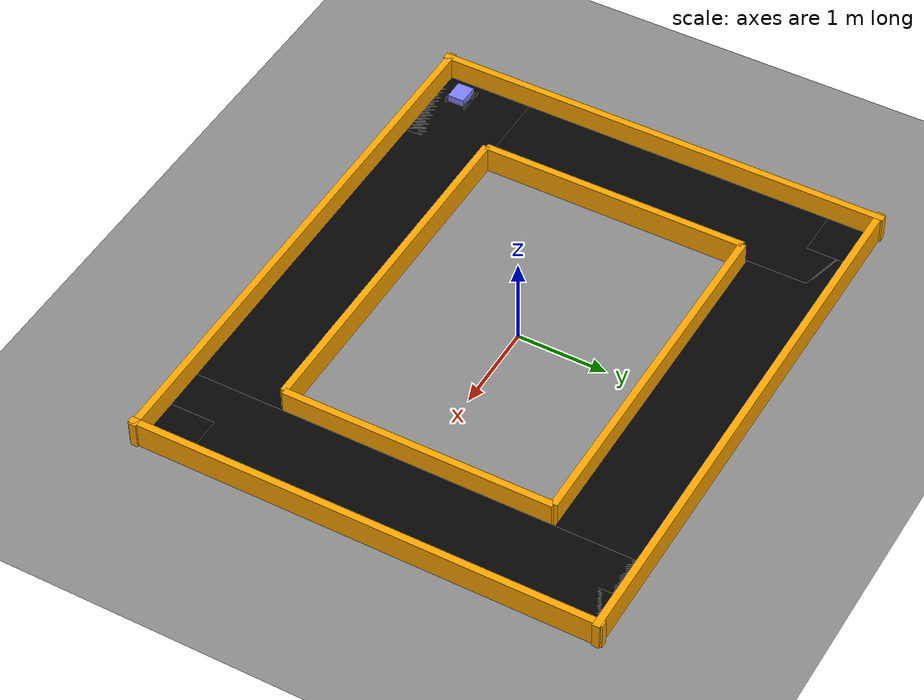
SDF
<?xml version="1.0" ?>
<sdf version="1.8">
  <world name="city_track_world">

    <plugin filename="gz-sim-physics-system" name="gz::sim::systems::Physics"/>
    <plugin filename="gz-sim-user-commands-system" name="gz::sim::systems::UserCommands"/>
    <plugin filename="gz-sim-scene-broadcaster-system" name="gz::sim::systems::SceneBroadcaster"/>

    <light type="directional" name="sun">
      <cast_shadows>true</cast_shadows>
      <pose>0 0 10 0 0 0</pose>
      <diffuse>0.8 0.8 0.8 1</diffuse>
      <specular>0.2 0.2 0.2 1</specular>
      <direction>-0.5 0.1 -0.9</direction>
    </light>

    <model name="ground_plane">
      <static>true</static>
      <link name="link">
        <collision name="collision">
          <geometry>
            <plane>
              <normal>0 0 1</normal>
              <size>20 20</size>
            </plane>
          </geometry>
        </collision>
        <visual name="visual">
          <geometry>
            <plane>
              <normal>0 0 1</normal>
              <size>20 20</size>
            </plane>
          </geometry>
          <material>
            <ambient>0.55 0.55 0.55 1</ambient>
            <diffuse>0.55 0.55 0.55 1</diffuse>
          </material>
        </visual>
      </link>
    </model>

    <!-- ================= CITY TRACK ROAD ================= -->
    <!-- Outer dimensions about 5 m x 4 m, track width about 0.5 m -->

    <!-- Bottom straight road -->
    <model name="bottom_road">
      <static>true</static>
      <pose>0 -2.02 0.03 0 0 0</pose>
      <link name="link">
        <visual name="visual">
          <geometry><box><size>6.0 0.96 0.04</size></box></geometry>
          <material><ambient>0.02 0.02 0.02 1</ambient><diffuse>0.02 0.02 0.02 1</diffuse></material>
        </visual>
      </link>
    </model>

    <!-- Top straight road -->
    <model name="top_road">
      <static>true</static>
      <pose>0 2.02 0.03 0 0 0</pose>
      <link name="link">
        <visual name="visual">
          <geometry><box><size>6.0 0.96 0.04</size></box></geometry>
          <material><ambient>0.02 0.02 0.02 1</ambient><diffuse>0.02 0.02 0.02 1</diffuse></material>
        </visual>
      </link>
    </model>

    <!-- Left straight road -->
    <model name="left_road">
      <static>true</static>
      <pose>-2.52 0 0.03 0 0 0</pose>
      <link name="link">
        <visual name="visual">
          <geometry><box><size>0.96 5.0 0.04</size></box></geometry>
          <material><ambient>0.02 0.02 0.02 1</ambient><diffuse>0.02 0.02 0.02 1</diffuse></material>
        </visual>
      </link>
    </model>

    <!-- Right straight road -->
    <model name="right_road">
      <static>true</static>
      <pose>2.52 0 0.03 0 0 0</pose>
      <link name="link">
        <visual name="visual">
          <geometry><box><size>0.96 5.0 0.04</size></box></geometry>
          <material><ambient>0.02 0.02 0.02 1</ambient><diffuse>0.02 0.02 0.02 1</diffuse></material>
        </visual>
      </link>
    </model>

    <!-- Corner blocks to visually complete the city loop -->
    <model name="corner_top_left">
      <static>true</static>
      <pose>-2.75 2.25 0.03 0 0 0</pose>
      <link name="link">
        <visual name="visual">
          <geometry><box><size>0.5 0.5 0.04</size></box></geometry>
          <material><ambient>0.02 0.02 0.02 1</ambient><diffuse>0.02 0.02 0.02 1</diffuse></material>
        </visual>
      </link>
    </model>

    <model name="corner_top_right">
      <static>true</static>
      <pose>2.75 2.25 0.03 0 0 0</pose>
      <link name="link">
        <visual name="visual">
          <geometry><box><size>0.5 0.5 0.04</size></box></geometry>
          <material><ambient>0.02 0.02 0.02 1</ambient><diffuse>0.02 0.02 0.02 1</diffuse></material>
        </visual>
      </link>
    </model>

    <model name="corner_bottom_left">
      <static>true</static>
      <pose>-2.75 -2.25 0.03 0 0 0</pose>
      <link name="link">
        <visual name="visual">
          <geometry><box><size>0.5 0.5 0.04</size></box></geometry>
          <material><ambient>0.02 0.02 0.02 1</ambient><diffuse>0.02 0.02 0.02 1</diffuse></material>
        </visual>
      </link>
    </model>

    <model name="corner_bottom_right">
      <static>true</static>
      <pose>2.75 -2.25 0.03 0 0 0</pose>
      <link name="link">
        <visual name="visual">
          <geometry><box><size>0.5 0.5 0.04</size></box></geometry>
          <material><ambient>0.02 0.02 0.02 1</ambient><diffuse>0.02 0.02 0.02 1</diffuse></material>
        </visual>
      </link>
    </model>

    <!-- ================= WALLS TO LIMIT WORKSPACE ================= -->
    <!-- Outer walls -->
    <model name="outer_wall_top">
      <static>true</static>
      <pose>0 2.54 0.15 0 0 0</pose>
      <link name="link">
        <visual name="visual"><geometry><box><size>6.2 0.08 0.30</size></box></geometry><material><ambient>1 0.65 0 1</ambient><diffuse>1 0.65 0 1</diffuse></material></visual>
        <collision name="collision"><geometry><box><size>5.2 0.08 0.30</size></box></geometry></collision>
      </link>
    </model>

    <model name="outer_wall_bottom">
      <static>true</static>
      <pose>0 -2.54 0.15 0 0 0</pose>
      <link name="link">
        <visual name="visual"><geometry><box><size>6.2 0.08 0.30</size></box></geometry><material><ambient>1 0.65 0 1</ambient><diffuse>1 0.65 0 1</diffuse></material></visual>
        <collision name="collision"><geometry><box><size>5.2 0.08 0.30</size></box></geometry></collision>
      </link>
    </model>

    <model name="outer_wall_left">
      <static>true</static>
      <pose>-3.04 0 0.15 0 0 0</pose>
      <link name="link">
        <visual name="visual"><geometry><box><size>0.08 5.2 0.30</size></box></geometry><material><ambient>1 0.65 0 1</ambient><diffuse>1 0.65 0 1</diffuse></material></visual>
        <collision name="collision"><geometry><box><size>0.08 4.2 0.30</size></box></geometry></collision>
      </link>
    </model>

    <model name="outer_wall_right">
      <static>true</static>
      <pose>3.04 0 0.15 0 0 0</pose>
      <link name="link">
        <visual name="visual"><geometry><box><size>0.08 5.2 0.30</size></box></geometry><material><ambient>1 0.65 0 1</ambient><diffuse>1 0.65 0 1</diffuse></material></visual>
        <collision name="collision"><geometry><box><size>0.08 4.2 0.30</size></box></geometry></collision>
      </link>
    </model>

    <!-- Inner walls / island -->
    <model name="inner_wall_top">
      <static>true</static>
      <pose>0 1.50 0.15 0 0 0</pose>
      <link name="link">
        <visual name="visual"><geometry><box><size>4.0 0.08 0.30</size></box></geometry><material><ambient>1 0.65 0 1</ambient><diffuse>1 0.65 0 1</diffuse></material></visual>
        <collision name="collision"><geometry><box><size>3.8 0.08 0.30</size></box></geometry></collision>
      </link>
    </model>

    <model name="inner_wall_bottom">
      <static>true</static>
      <pose>0 -1.50 0.15 0 0 0</pose>
      <link name="link">
        <visual name="visual"><geometry><box><size>4.0 0.08 0.30</size></box></geometry><material><ambient>1 0.65 0 1</ambient><diffuse>1 0.65 0 1</diffuse></material></visual>
        <collision name="collision"><geometry><box><size>3.8 0.08 0.30</size></box></geometry></collision>
      </link>
    </model>

    <model name="inner_wall_left">
      <static>true</static>
      <pose>-2.00 0 0.15 0 0 0</pose>
      <link name="link">
        <visual name="visual"><geometry><box><size>0.08 3.0 0.30</size></box></geometry><material><ambient>1 0.65 0 1</ambient><diffuse>1 0.65 0 1</diffuse></material></visual>
        <collision name="collision"><geometry><box><size>0.08 2.4 0.30</size></box></geometry></collision>
      </link>
    </model>

    <model name="inner_wall_right">
      <static>true</static>
      <pose>2.00 0 0.15 0 0 0</pose>
      <link name="link">
        <visual name="visual"><geometry><box><size>0.08 3.0 0.30</size></box></geometry><material><ambient>1 0.65 0 1</ambient><diffuse>1 0.65 0 1</diffuse></material></visual>
        <collision name="collision"><geometry><box><size>0.08 2.4 0.30</size></box></geometry></collision>
      </link>
    </model>

    <!-- ================= VEHICLE ================= -->
    <model name='vehicle_blue'>
      <pose>-2.75 -2.25 0.01625 0 0 -0.000003</pose>
      <link name='chassis'>
        <pose>-0.017036 0 0.04375 0 0 0</pose>
        <inertial>
          <mass>1.14395</mass>
          <inertia>
            <ixx>0.126164</ixx>
            <ixy>0</ixy>
            <ixz>0</ixz>
            <iyy>0.41651899999999997</iyy>
            <iyz>0</iyz>
            <izz>0.481014</izz>
          </inertia>
          <pose>0 0 0 0 0 0</pose>
        </inertial>
        <visual name='visual'>
          <geometry>
            <box>
              <size>0.226285 0.1875 0.142181</size>
            </box>
          </geometry>
          <material>
            <ambient>0.5 0.5 1 1</ambient>
            <diffuse>0.5 0.5 1 1</diffuse>
            <specular>0 0 1 1</specular>
          </material>
        </visual>
        <collision name='collision'>
          <geometry>
            <box>
              <size>0.226285 0.1875 0.142181</size>
            </box>
          </geometry>
          <surface>
            <friction>
              <ode/>
            </friction>
            <bounce/>
            <contact/>
          </surface>
        </collision>
        <enable_wind>false</enable_wind>
      </link>
      <link name='front_left_wheel'>
        <pose>0.062357 0.117193 -0.00625 -1.5707 0 0</pose>
        <inertial>
          <mass>2</mass>
          <inertia>
            <ixx>0.14583299999999999</ixx>
            <ixy>0</ixy>
            <ixz>0</ixz>
            <iyy>0.14583299999999999</iyy>
            <iyz>0</iyz>
            <izz>0.125</izz>
          </inertia>
          <pose>0 0 0 0 0 0</pose>
        </inertial>
        <visual name='visual'>
          <geometry>
            <cylinder>
              <length>0.028125</length>
              <radius>0.075</radius>
            </cylinder>
          </geometry>
          <material>
            <ambient>0.200000003 0.200000003 0.200000003 1</ambient>
            <diffuse>0.200000003 0.200000003 0.200000003 1</diffuse>
            <specular>0.200000003 0.200000003 0.200000003 1</specular>
          </material>
        </visual>
        <collision name='collision'>
          <geometry>
            <cylinder>
              <length>0.028125</length>
              <radius>0.075</radius>
            </cylinder>
          </geometry>
          <surface>
            <friction>
              <ode>
                <mu>0.5</mu>
                <mu2>1</mu2>
                <fdir1>0 0 1</fdir1>
              </ode>
              <bullet>
                <friction>0.5</friction>
                <friction2>1</friction2>
                <rolling_friction>0.10000000000000001</rolling_friction>
              </bullet>
            </friction>
            <bounce/>
            <contact/>
          </surface>
        </collision>
        <enable_wind>false</enable_wind>
      </link>
      <link name='rear_left_wheel'>
        <pose>-0.107678 0.117193 -0.00625 -1.5707 0 0</pose>
        <inertial>
          <mass>2</mass>
          <inertia>
            <ixx>0.14583299999999999</ixx>
            <ixy>0</ixy>
            <ixz>0</ixz>
            <iyy>0.14583299999999999</iyy>
            <iyz>0</iyz>
            <izz>0.125</izz>
          </inertia>
          <pose>0 0 0 0 0 0</pose>
        </inertial>
        <visual name='visual'>
          <geometry>
            <cylinder>
              <length>0.028125</length>
              <radius>0.075</radius>
            </cylinder>
          </geometry>
          <material>
            <ambient>0.200000003 0.200000003 0.200000003 1</ambient>
            <diffuse>0.200000003 0.200000003 0.200000003 1</diffuse>
            <specular>0.200000003 0.200000003 0.200000003 1</specular>
          </material>
        </visual>
        <collision name='collision'>
          <geometry>
            <cylinder>
              <length>0.028125</length>
              <radius>0.075</radius>
            </cylinder>
          </geometry>
          <surface>
            <friction>
              <ode>
                <mu>0.5</mu>
                <mu2>1</mu2>
                <fdir1>0 0 1</fdir1>
              </ode>
              <bullet>
                <friction>0.5</friction>
                <friction2>1</friction2>
                <rolling_friction>0.5</rolling_friction>
              </bullet>
            </friction>
            <bounce/>
            <contact/>
          </surface>
        </collision>
        <enable_wind>false</enable_wind>
      </link>
      <link name='front_right_wheel'>
        <pose>0.062357 -0.117193 -0.00625 -1.5707 0 0</pose>
        <inertial>
          <mass>2</mass>
          <inertia>
            <ixx>0.14583299999999999</ixx>
            <ixy>0</ixy>
            <ixz>0</ixz>
            <iyy>0.14583299999999999</iyy>
            <iyz>0</iyz>
            <izz>0.125</izz>
          </inertia>
          <pose>0 0 0 0 0 0</pose>
        </inertial>
        <visual name='visual'>
          <geometry>
            <cylinder>
              <length>0.028125</length>
              <radius>0.075</radius>
            </cylinder>
          </geometry>
          <material>
            <ambient>0.200000003 0.200000003 0.200000003 1</ambient>
            <diffuse>0.200000003 0.200000003 0.200000003 1</diffuse>
            <specular>0.200000003 0.200000003 0.200000003 1</specular>
          </material>
        </visual>
        <collision name='collision'>
          <geometry>
            <cylinder>
              <length>0.028125</length>
              <radius>0.075</radius>
            </cylinder>
          </geometry>
          <surface>
            <friction>
              <ode>
                <mu>0.5</mu>
                <mu2>1</mu2>
                <fdir1>0 0 1</fdir1>
              </ode>
              <bullet>
                <friction>0.5</friction>
                <friction2>1</friction2>
                <rolling_friction>0.10000000000000001</rolling_friction>
              </bullet>
            </friction>
            <bounce/>
            <contact/>
          </surface>
        </collision>
        <enable_wind>false</enable_wind>
      </link>
      <link name='rear_right_wheel'>
        <pose>-0.107678 -0.117193 -0.00625 -1.5707 0 0</pose>
        <inertial>
          <mass>2</mass>
          <inertia>
            <ixx>0.14583299999999999</ixx>
            <ixy>0</ixy>
            <ixz>0</ixz>
            <iyy>0.14583299999999999</iyy>
            <iyz>0</iyz>
            <izz>0.125</izz>
          </inertia>
          <pose>0 0 0 0 0 0</pose>
        </inertial>
        <visual name='visual'>
          <geometry>
            <cylinder>
              <length>0.028125</length>
              <radius>0.075</radius>
            </cylinder>
          </geometry>
          <material>
            <ambient>0.200000003 0.200000003 0.200000003 1</ambient>
            <diffuse>0.200000003 0.200000003 0.200000003 1</diffuse>
            <specular>0.200000003 0.200000003 0.200000003 1</specular>
          </material>
        </visual>
        <collision name='collision'>
          <geometry>
            <cylinder>
              <length>0.028125</length>
              <radius>0.075</radius>
            </cylinder>
          </geometry>
          <surface>
            <friction>
              <ode>
                <mu>0.5</mu>
                <mu2>1</mu2>
                <fdir1>0 0 1</fdir1>
              </ode>
              <bullet>
                <friction>0.5</friction>
                <friction2>1</friction2>
                <rolling_friction>0.5</rolling_friction>
              </bullet>
            </friction>
            <bounce/>
            <contact/>
          </surface>
        </collision>
        <enable_wind>false</enable_wind>
      </link>
      <link name='front_left_wheel_steering_link'>
        <pose>0.062357 0.09375 0.005 0 0 0</pose>
        <inertial>
          <mass>0.5</mass>
          <inertia>
            <ixx>0.015299999999999999</ixx>
            <iyy>0.025000000000000001</iyy>
            <izz>0.015299999999999999</izz>
            <ixy>0</ixy>
            <ixz>0</ixz>
            <iyz>0</iyz>
          </inertia>
          <pose>0 0 0 0 0 0</pose>
        </inertial>
        <visual name='steering_link_visual'>
          <pose>0 0 0 0 0 0</pose>
          <geometry>
            <cylinder>
              <length>0.01875</length>
              <radius>0.0075</radius>
            </cylinder>
          </geometry>
          <material>
            <ambient>1 1 1 1</ambient>
            <diffuse>1 1 1 1</diffuse>
          </material>
        </visual>
        <enable_wind>false</enable_wind>
      </link>
      <link name='front_right_wheel_steering_link'>
        <pose>0.062357 -0.09375 0.005 0 0 0</pose>
        <inertial>
          <mass>0.5</mass>
          <inertia>
            <ixx>0.015299999999999999</ixx>
            <iyy>0.025000000000000001</iyy>
            <izz>0.015299999999999999</izz>
            <ixy>0</ixy>
            <ixz>0</ixz>
            <iyz>0</iyz>
          </inertia>
          <pose>0 0 0 0 0 0</pose>
        </inertial>
        <visual name='steering_link_visual'>
          <pose>0 0 0 0 0 0</pose>
          <geometry>
            <cylinder>
              <length>0.01875</length>
              <radius>0.0075</radius>
            </cylinder>
          </geometry>
          <material>
            <ambient>1 1 1 1</ambient>
            <diffuse>1 1 1 1</diffuse>
          </material>
        </visual>
        <enable_wind>false</enable_wind>
      </link>
      <joint name='front_left_wheel_steering_joint' type='revolute'>
        <child>front_left_wheel_steering_link</child>
        <parent>chassis</parent>
        <axis>
          <xyz>0 0 1</xyz>
          <limit>
            <lower>-0.59999999999999998</lower>
            <upper>0.59999999999999998</upper>
            <effort>25</effort>
            <velocity>1</velocity>
            <stiffness>100000000</stiffness>
            <dissipation>1</dissipation>
          </limit>
          <dynamics>
            <spring_reference>0</spring_reference>
            <spring_stiffness>0</spring_stiffness>
            <damping>0</damping>
            <friction>0</friction>
          </dynamics>
        </axis>
        <pose>0 0 0 0 0 0</pose>
      </joint>
      <joint name='front_right_wheel_steering_joint' type='revolute'>
        <parent>chassis</parent>
        <child>front_right_wheel_steering_link</child>
        <axis>
          <xyz>0 0 1</xyz>
          <limit>
            <lower>-0.59999999999999998</lower>
            <upper>0.59999999999999998</upper>
            <effort>25</effort>
            <velocity>1</velocity>
            <stiffness>100000000</stiffness>
            <dissipation>1</dissipation>
          </limit>
          <dynamics>
            <spring_reference>0</spring_reference>
            <spring_stiffness>0</spring_stiffness>
            <damping>0</damping>
            <friction>0</friction>
          </dynamics>
        </axis>
        <pose>0 0 0 0 0 0</pose>
      </joint>
      <joint name='front_left_wheel_joint' type='revolute'>
        <parent>front_left_wheel_steering_link</parent>
        <child>front_left_wheel</child>
        <axis>
          <xyz>0 0 1</xyz>
          <limit>
            <lower>-1.7976900000000001e+308</lower>
            <upper>1.7976900000000001e+308</upper>
            <effort>inf</effort>
            <velocity>inf</velocity>
            <stiffness>100000000</stiffness>
            <dissipation>1</dissipation>
          </limit>
          <dynamics>
            <spring_reference>0</spring_reference>
            <spring_stiffness>0</spring_stiffness>
            <damping>0</damping>
            <friction>0</friction>
          </dynamics>
        </axis>
        <pose>0 0 0 0 0 0</pose>
      </joint>
      <joint name='front_right_wheel_joint' type='revolute'>
        <parent>front_right_wheel_steering_link</parent>
        <child>front_right_wheel</child>
        <axis>
          <xyz>0 0 1</xyz>
          <limit>
            <lower>-1.7976900000000001e+308</lower>
            <upper>1.7976900000000001e+308</upper>
            <effort>inf</effort>
            <velocity>inf</velocity>
            <stiffness>100000000</stiffness>
            <dissipation>1</dissipation>
          </limit>
          <dynamics>
            <spring_reference>0</spring_reference>
            <spring_stiffness>0</spring_stiffness>
            <damping>0</damping>
            <friction>0</friction>
          </dynamics>
        </axis>
        <pose>-0 0 0 0 0 0</pose>
      </joint>
      <joint name='rear_left_wheel_joint' type='revolute'>
        <parent>chassis</parent>
        <child>rear_left_wheel</child>
        <axis>
          <xyz>0 0 1</xyz>
          <limit>
            <lower>-1.7976900000000001e+308</lower>
            <upper>1.7976900000000001e+308</upper>
            <effort>inf</effort>
            <velocity>inf</velocity>
            <stiffness>100000000</stiffness>
            <dissipation>1</dissipation>
          </limit>
          <dynamics>
            <spring_reference>0</spring_reference>
            <spring_stiffness>0</spring_stiffness>
            <damping>0</damping>
            <friction>0</friction>
          </dynamics>
        </axis>
        <pose>0 0 0 0 0 0</pose>
      </joint>
      <joint name='rear_right_wheel_joint' type='revolute'>
        <parent>chassis</parent>
        <child>rear_right_wheel</child>
        <axis>
          <xyz>0 0 1</xyz>
          <limit>
            <lower>-1.7976900000000001e+308</lower>
            <upper>1.7976900000000001e+308</upper>
            <effort>inf</effort>
            <velocity>inf</velocity>
            <stiffness>100000000</stiffness>
            <dissipation>1</dissipation>
          </limit>
          <dynamics>
            <spring_reference>0</spring_reference>
            <spring_stiffness>0</spring_stiffness>
            <damping>0</damping>
            <friction>0</friction>
          </dynamics>
        </axis>
        <pose>0 0 0 0 0 0</pose>
      </joint>
      <plugin name='gz::sim::systems::AckermannSteering' filename='gz-sim-ackermann-steering-system'>
        <left_joint>front_left_wheel_joint</left_joint>
        <left_joint>rear_left_wheel_joint</left_joint>
        <right_joint>front_right_wheel_joint</right_joint>
        <right_joint>rear_right_wheel_joint</right_joint>
        <left_steering_joint>front_left_wheel_steering_joint</left_steering_joint>
        <right_steering_joint>front_right_wheel_steering_joint</right_steering_joint>
        <kingpin_width>1.0</kingpin_width>
        <steering_limit>0.5</steering_limit>
        <wheel_base>1.0</wheel_base>
        <wheel_separation>1.25</wheel_separation>
        <wheel_radius>0.3</wheel_radius>
        <min_velocity>-1</min_velocity>
        <max_velocity>1</max_velocity>
        <min_acceleration>-3</min_acceleration>
        <max_acceleration>3</max_acceleration>
      </plugin>
      <static>false</static>
      <self_collide>false</self_collide>
    </model>

  </world>
</sdf>
